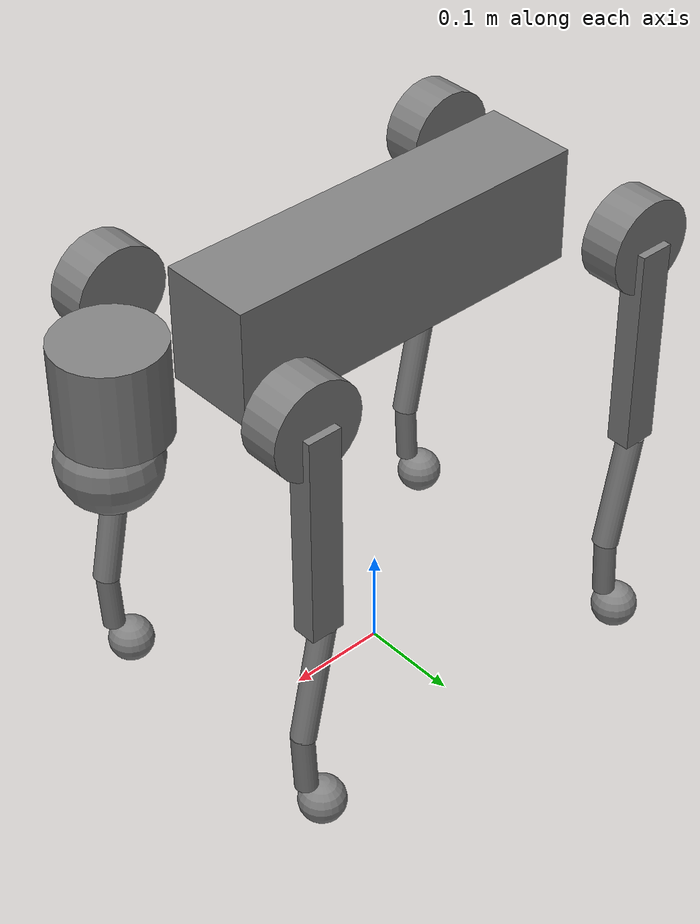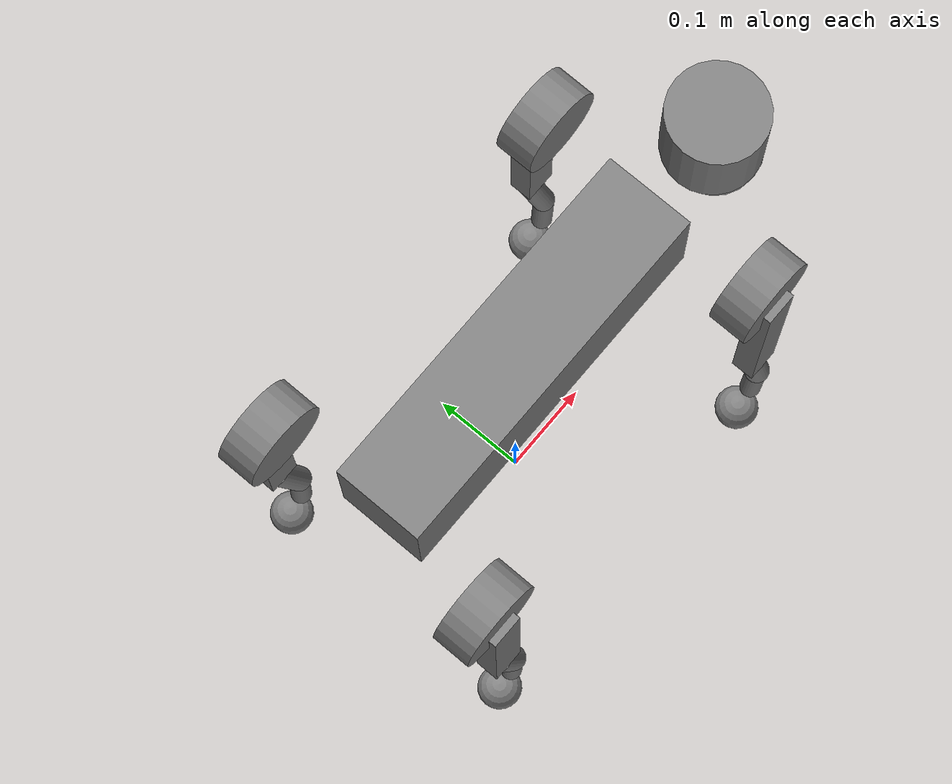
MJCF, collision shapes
<mujoco model="go2">
  <compiler angle="radian" meshdir="assets" autolimits="true"/>

  <size njmax="500" nconmax="200"/>

  <default>
    <default class="go2">
      <geom friction="0.6" margin="0.001" condim="1"/>
      <joint axis="0 1 0"/>
      <default class="visual">
        <geom type="mesh" contype="0" conaffinity="0" group="2"/>
      </default>
      <default class="collision">
        <geom group="3" contype="1" conaffinity="0"/>
        <default class="foot">
          <geom type="sphere" size="0.023" pos="0 0 -0.213"/>
        </default>
      </default>
    </default>
  </default>

  <asset>
    <material name="metal" rgba=".9 .95 .95 1"/>
    <material name="black" rgba="0 0 0 1"/>
    <material name="white" rgba="1 1 1 1"/>
    <material name="gray" rgba="0.671705 0.692426 0.774270 1"/>

    <mesh file="base_0.obj"/>
    <mesh file="base_1.obj"/>
    <mesh file="base_2.obj"/>
    <mesh file="base_3.obj"/>
    <mesh file="base_4.obj"/>
    <mesh file="hip_0.obj"/>
    <mesh file="hip_1.obj"/>
    <mesh file="thigh_0.obj"/>
    <mesh file="thigh_1.obj"/>
    <mesh file="thigh_mirror_0.obj"/>
    <mesh file="thigh_mirror_1.obj"/>
    <mesh file="calf_0.obj"/>
    <mesh file="calf_1.obj"/>
    <mesh file="calf_mirror_0.obj"/>
    <mesh file="calf_mirror_1.obj"/>
    <mesh file="foot.obj"/>
  </asset>

  <worldbody>
    <body name="trunk" pos="0 0 0.445" childclass="go2">
      <camera name="tracking" pos="0.846 -1.465 0.916" xyaxes="0.866 0.500 0.000 -0.171 0.296 0.940" mode="trackcom"/>
      <inertial pos="0.021112 0 -0.005366" quat="-0.000543471 0.713435 -0.00173769 0.700719" mass="6.921"
        diaginertia="0.107027 0.0980771 0.0244531"/>
      <freejoint name="floating_base_joint"/>
      <geom mesh="base_0" material="black" class="visual"/>
      <geom mesh="base_1" material="black" class="visual"/>
      <geom mesh="base_2" material="black" class="visual"/>
      <geom mesh="base_3" material="white" class="visual"/>
      <geom mesh="base_4" material="gray" class="visual"/>
      <geom name="base_collision" size="0.1881 0.04675 0.057" type="box" class="collision"/>
      <geom name="lidar_collision" size="0.05 0.045" pos="0.285 0 0.01" type="cylinder" class="collision"/>
      <geom name="trunk_collision" size="0.047" pos="0.293 0 -0.06" class="collision"/>
      <site name="imu" pos="-0.02557 0 0.04232"/>

      <body name="FR_hip" pos="0.1934 -0.0465 0">
        <inertial pos="-0.0054 -0.00194 -0.000105" quat="0.498237 0.505462 0.499245 0.497014" mass="0.678"
          diaginertia="0.00088403 0.000596003 0.000479967"/>
        <joint name="FR_hip_joint" axis="1 0 0" range="-1.0472 1.0472"/>
        <geom mesh="hip_0" material="metal" class="visual" quat="4.63268e-05 1 0 0"/>
        <geom mesh="hip_1" material="gray" class="visual" quat="4.63268e-05 1 0 0"/>
        <geom name="FR_hip_collision" size="0.046 0.02" pos="0 -0.08 0" quat="0.707107 0.707107 0 0" type="cylinder" class="collision"/>
        <body name="FR_thigh" pos="0 -0.0955 0">
          <inertial pos="-0.00374 0.0223 -0.0327" quat="0.551623 -0.0200632 0.0847635 0.829533" mass="1.152"
            diaginertia="0.00594973 0.00584149 0.000878787"/>
          <joint name="FR_thigh_joint" range="-1.5708 3.4907"/>
          <geom mesh="thigh_mirror_0" material="metal" class="visual"/>
          <geom mesh="thigh_mirror_1" material="gray" class="visual"/>
          <geom name="FR_thigh_collision" size="0.1065 0.01225 0.017" pos="0 0 -0.1065" quat="0.707107 0 0.707107 0" type="box" class="collision"/>
          <body name="FR_calf" pos="0 0 -0.213">
            <inertial pos="0.00629595 0.000622121 -0.141417" quat="0.703508 -0.00450087 0.00154099 0.710672"
              mass="0.241352" diaginertia="0.0014901 0.00146356 5.31397e-05"/>
            <joint name="FR_calf_joint" range="-2.7227 -0.83776"/>
            <geom mesh="calf_mirror_0" material="gray" class="visual"/>
            <geom mesh="calf_mirror_1" material="black" class="visual"/>
            <geom name="FR_calf_collision1" size="0.013 0.06" pos="0.01 0 -0.06" quat="0.995004 0 -0.0998334 0" type="cylinder" class="collision"/>
            <geom name="FR_calf_collision2" size="0.011 0.0325" pos="0.02 0 -0.148" quat="0.999688 0 0.0249974 0" type="cylinder" class="collision"/>
            <geom pos="0 0 -0.213" mesh="foot" class="visual" material="black"/>
            <geom name="FR_foot_collision" class="foot"/>
            <site name="FR" pos="0 0 -0.213" type="sphere" size="0.023" group="5"/>
          </body>
        </body>
      </body>
      <body name="FL_hip" pos="0.1934 0.0465 0">
        <inertial pos="-0.0054 0.00194 -0.000105" quat="0.497014 0.499245 0.505462 0.498237" mass="0.678"
          diaginertia="0.00088403 0.000596003 0.000479967"/>
        <joint name="FL_hip_joint" axis="1 0 0" range="-1.0472 1.0472"/>
        <geom mesh="hip_0" material="metal" class="visual"/>
        <geom mesh="hip_1" material="gray" class="visual"/>
        <geom name="FL_hip_collision" size="0.046 0.02" pos="0 0.08 0" quat="1 1 0 0" type="cylinder" class="collision"/>
        <body name="FL_thigh" pos="0 0.0955 0">
          <inertial pos="-0.00374 -0.0223 -0.0327" quat="0.829533 0.0847635 -0.0200632 0.551623" mass="1.152"
            diaginertia="0.00594973 0.00584149 0.000878787"/>
          <joint name="FL_thigh_joint" range="-1.5708 3.4907"/>
          <geom mesh="thigh_0" material="metal" class="visual"/>
          <geom mesh="thigh_1" material="gray" class="visual"/>
          <geom name="FL_thigh_collision" size="0.1065 0.01225 0.017" pos="0 0 -0.1065" quat="0.707107 0 0.707107 0" type="box" class="collision"/>
          <body name="FL_calf" pos="0 0 -0.213">
            <inertial pos="0.00629595 -0.000622121 -0.141417" quat="0.710672 0.00154099 -0.00450087 0.703508"
              mass="0.241352" diaginertia="0.0014901 0.00146356 5.31397e-05"/>
            <joint name="FL_calf_joint" range="-2.7227 -0.83776"/>
            <geom mesh="calf_0" material="gray" class="visual"/>
            <geom mesh="calf_1" material="black" class="visual"/>
            <geom name="FL_calf_collision1" size="0.012 0.06" pos="0.008 0 -0.06" quat="0.994493 0 -0.104807 0" type="cylinder" class="collision"/>
            <geom name="FL_calf_collision2" size="0.011 0.0325" pos="0.02 0 -0.148" quat="0.999688 0 0.0249974 0" type="cylinder" class="collision"/>
            <geom pos="0 0 -0.213" mesh="foot" class="visual" material="black"/>
            <geom name="FL_foot_collision" class="foot"/>
            <site name="FL" pos="0 0 -0.213" type="sphere" size="0.023" group="5"/>
          </body>
        </body>
      </body>
      <body name="RR_hip" pos="-0.1934 -0.0465 0">
        <inertial pos="0.0054 -0.00194 -0.000105" quat="0.499245 0.497014 0.498237 0.505462" mass="0.678"
          diaginertia="0.00088403 0.000596003 0.000479967"/>
        <joint name="RR_hip_joint" axis="1 0 0" range="-1.0472 1.0472"/>
        <geom mesh="hip_0" material="metal" class="visual" quat="2.14617e-09 4.63268e-05 4.63268e-05 -1"/>
        <geom mesh="hip_1" material="gray" class="visual" quat="2.14617e-09 4.63268e-05 4.63268e-05 -1"/>
        <geom name="RR_hip_collision" size="0.046 0.02" pos="0 -0.08 0" quat="0.707107 0.707107 0 0" type="cylinder" class="collision"/>
        <body name="RR_thigh" pos="0 -0.0955 0">
          <inertial pos="-0.00374 0.0223 -0.0327" quat="0.551623 -0.0200632 0.0847635 0.829533" mass="1.152"
            diaginertia="0.00594973 0.00584149 0.000878787"/>
          <joint name="RR_thigh_joint" range="-0.5236 4.5379"/>
          <geom mesh="thigh_mirror_0" material="metal" class="visual"/>
          <geom mesh="thigh_mirror_1" material="gray" class="visual"/>
          <geom name="RR_thigh_collision" size="0.1065 0.01225 0.017" pos="0 0 -0.1065" quat="0.707107 0 0.707107 0" type="box" class="collision"/>
          <body name="RR_calf" pos="0 0 -0.213">
            <inertial pos="0.00629595 0.000622121 -0.141417" quat="0.703508 -0.00450087 0.00154099 0.710672"
              mass="0.241352" diaginertia="0.0014901 0.00146356 5.31397e-05"/>
            <joint name="RR_calf_joint" range="-2.7227 -0.83776"/>
            <geom mesh="calf_mirror_0" material="gray" class="visual"/>
            <geom mesh="calf_mirror_1" material="black" class="visual"/>
            <geom name="RR_calf_collision1" size="0.013 0.06" pos="0.01 0 -0.06" quat="0.995004 0 -0.0998334 0" type="cylinder" class="collision"/>
            <geom name="RR_calf_collision2" size="0.011 0.0325" pos="0.02 0 -0.148" quat="0.999688 0 0.0249974 0" type="cylinder" class="collision"/>
            <geom pos="0 0 -0.213" mesh="foot" class="visual" material="black"/>
            <geom name="RR_foot_collision" class="foot"/>
            <site name="RR" pos="0 0 -0.213" type="sphere" size="0.023" group="5"/>
          </body>
        </body>
      </body>
      <body name="RL_hip" pos="-0.1934 0.0465 0">
        <inertial pos="0.0054 0.00194 -0.000105" quat="0.505462 0.498237 0.497014 0.499245" mass="0.678"
          diaginertia="0.00088403 0.000596003 0.000479967"/>
        <joint name="RL_hip_joint" axis="1 0 0" range="-1.0472 1.0472"/>
        <geom mesh="hip_0" material="metal" class="visual" quat="4.63268e-05 0 1 0"/>
        <geom mesh="hip_1" material="gray" class="visual" quat="4.63268e-05 0 1 0"/>
        <geom name="RL_hip_collision" size="0.046 0.02" pos="0 0.08 0" quat="0.707107 0.707107 0 0" type="cylinder" class="collision"/>
        <body name="RL_thigh" pos="0 0.0955 0">
          <inertial pos="-0.00374 -0.0223 -0.0327" quat="0.829533 0.0847635 -0.0200632 0.551623" mass="1.152"
            diaginertia="0.00594973 0.00584149 0.000878787"/>
          <joint name="RL_thigh_joint" range="-0.5236 4.5379"/>
          <geom mesh="thigh_0" material="metal" class="visual"/>
          <geom mesh="thigh_1" material="gray" class="visual"/>
          <geom name="RL_thigh_collision" size="0.1065 0.01225 0.017" pos="0 0 -0.1065" quat="0.707107 0 0.707107 0" type="box" class="collision"/>
          <body name="RL_calf" pos="0 0 -0.213">
            <inertial pos="0.00629595 -0.000622121 -0.141417" quat="0.710672 0.00154099 -0.00450087 0.703508"
              mass="0.241352" diaginertia="0.0014901 0.00146356 5.31397e-05"/>
            <joint name="RL_calf_joint" range="-2.7227 -0.83776"/>
            <geom mesh="calf_0" material="gray" class="visual"/>
            <geom mesh="calf_1" material="black" class="visual"/>
            <geom name="RL_calf_collision1" size="0.013 0.06" pos="0.01 0 -0.06" quat="0.995004 0 -0.0998334 0" type="cylinder" class="collision"/>
            <geom name="RL_calf_collision2" size="0.011 0.0325" pos="0.02 0 -0.148" quat="0.999688 0 0.0249974 0" type="cylinder" class="collision"/>
            <geom pos="0 0 -0.213" mesh="foot" class="visual" material="black"/>
            <geom name="RL_foot_collision" class="foot"/>
            <site name="RL" pos="0 0 -0.213" type="sphere" size="0.023" group="5"/>
          </body>
        </body>
      </body>
    </body>

  </worldbody>
    <sensor>
    <gyro name="imu_ang_vel" site="imu"/>
    <velocimeter name="imu_lin_vel" site="imu"/>
    <accelerometer name="imu_lin_acc" site="imu"/>
    <subtreeangmom name="root_angmom" body="trunk"/>
  </sensor>
</mujoco>
